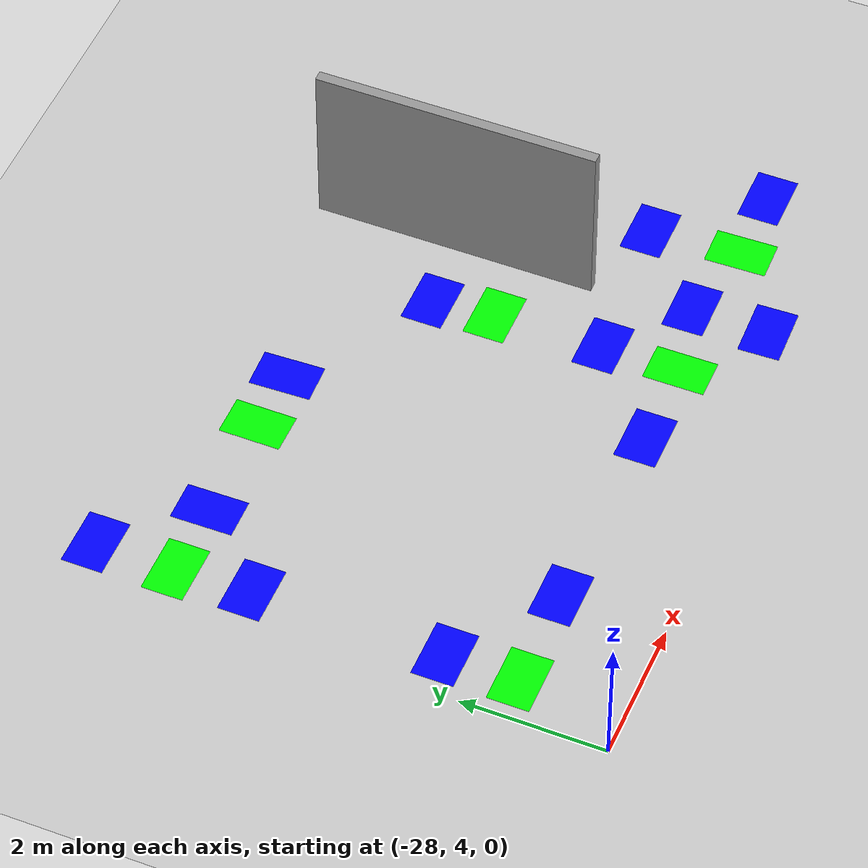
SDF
<sdf version="1.6">
 <world name="default">
  <model name="ground_plane">
   <pose>0 0 0.001 0 -0 0</pose>
   <static>1</static>
   <link name="link">
    <collision name="collision">
     <geometry><plane><normal>0 0 1</normal><size>100 100</size></plane></geometry>
     <surface><friction><ode><mu>100</mu><mu2>50</mu2></ode></friction></surface>
    </collision>
    <visual name="visual">
     <cast_shadows>0</cast_shadows>
     <geometry><plane><normal>0 0 1</normal><size>100 100</size></plane></geometry>
     <material>
      <script><uri>file://media/materials/scripts/gazebo.material</uri><name>Gazebo/Grey</name></script>
     </material>
    </visual>
   </link>
  </model>
  <model name="intersection_0">
   <link name="link">
    <pose>0 0 0.001 0 -0 0</pose>
    <inertial>
     <mass>0.0352517</mass>
     <inertia>
      <ixx>0.000997067</ixx>
      <ixy>0</ixy>
      <ixz>0</ixz>
      <iyy>0.00220147</iyy>
      <iyz>0</iyz>
      <izz>0.0031692</izz>
     </inertia>
     <pose>0 0 0.001 0 -0 0</pose>
    </inertial>
    <visual name="visual">
     <geometry><box><size>0.862743 0.578289 1e-06</size></box></geometry>
     <material>
      <script><name>Gazebo/Grey</name><uri>file://media/materials/scripts/gazebo.material</uri></script>
      <ambient>0 0 1 1</ambient>
      <diffuse>0 0 1 1</diffuse>
      <specular>0 0 1 1</specular>
      <emissive>0 0 1 1</emissive>
      <shader type="vertex"><normal_map>__default__</normal_map></shader>
     </material>
     <pose>0 0 0.001 0 -0 0</pose>
    </visual>
    <collision name="collision">
     <pose>0 0 0.001 0 -0 0</pose>
     <geometry><box><size>0.862743 0.578289 0.000477</size></box></geometry>
     <surface>
      <friction>
       <ode><mu>1</mu><mu2>1</mu2><fdir1>0 0 0</fdir1><slip1>0</slip1><slip2>0</slip2></ode>
       <torsional>
        <coefficient>1</coefficient>
        <patch_radius>0</patch_radius>
        <surface_radius>0</surface_radius>
        <use_patch_radius>1</use_patch_radius>
        <ode><slip>0</slip></ode>
       </torsional>
      </friction>
      <bounce><restitution_coefficient>0</restitution_coefficient><threshold>1e+06</threshold></bounce>
      <contact>
       <collide_without_contact>0</collide_without_contact>
       <collide_without_contact_bitmask>1</collide_without_contact_bitmask>
       <collide_bitmask>1</collide_bitmask>
       <ode>
        <soft_cfm>0</soft_cfm>
        <soft_erp>0.2</soft_erp>
        <kp>1e+13</kp>
        <kd>1</kd>
        <max_vel>0.01</max_vel>
        <min_depth>0</min_depth>
       </ode>
       <bullet>
        <split_impulse>1</split_impulse>
        <split_impulse_penetration_threshold>-0.01</split_impulse_penetration_threshold>
        <soft_cfm>0</soft_cfm>
        <soft_erp>0.2</soft_erp>
        <kp>1e+13</kp>
        <kd>1</kd>
       </bullet>
      </contact>
     </surface>
    </collision>
   </link>
   <static>1</static>
   <pose>-26.3775 10.1536 0 0 0 -1.55728</pose>
  </model>
  <model name="intersection_1">
   <link name="link">
    <pose>0 0 0.001 0 -0 0</pose>
    <inertial>
     <mass>0.0352517</mass>
     <inertia>
      <ixx>0.000997067</ixx>
      <ixy>0</ixy>
      <ixz>0</ixz>
      <iyy>0.00220147</iyy>
      <iyz>0</iyz>
      <izz>0.0031692</izz>
     </inertia>
     <pose>0 0 0.001 0 -0 0</pose>
    </inertial>
    <visual name="visual">
     <geometry><box><size>0.862743 0.578289 1e-06</size></box></geometry>
     <material>
      <script><name>Gazebo/Grey</name><uri>file://media/materials/scripts/gazebo.material</uri></script>
      <ambient>0 0 1 1</ambient>
      <diffuse>0 0 1 1</diffuse>
      <specular>0 0 1 1</specular>
      <emissive>0 0 1 1</emissive>
      <shader type="vertex"><normal_map>__default__</normal_map></shader>
     </material>
     <pose>0 0 0.001 0 -0 0</pose>
    </visual>
    <collision name="collision">
     <pose>0 0 0.001 0 -0 0</pose>
     <geometry><box><size>0.862743 0.578289 0.000477</size></box></geometry>
     <surface>
      <friction>
       <ode><mu>1</mu><mu2>1</mu2><fdir1>0 0 0</fdir1><slip1>0</slip1><slip2>0</slip2></ode>
       <torsional>
        <coefficient>1</coefficient>
        <patch_radius>0</patch_radius>
        <surface_radius>0</surface_radius>
        <use_patch_radius>1</use_patch_radius>
        <ode><slip>0</slip></ode>
       </torsional>
      </friction>
      <bounce><restitution_coefficient>0</restitution_coefficient><threshold>1e+06</threshold></bounce>
      <contact>
       <collide_without_contact>0</collide_without_contact>
       <collide_without_contact_bitmask>1</collide_without_contact_bitmask>
       <collide_bitmask>1</collide_bitmask>
       <ode>
        <soft_cfm>0</soft_cfm>
        <soft_erp>0.2</soft_erp>
        <kp>1e+13</kp>
        <kd>1</kd>
        <max_vel>0.01</max_vel>
        <min_depth>0</min_depth>
       </ode>
       <bullet>
        <split_impulse>1</split_impulse>
        <split_impulse_penetration_threshold>-0.01</split_impulse_penetration_threshold>
        <soft_cfm>0</soft_cfm>
        <soft_erp>0.2</soft_erp>
        <kp>1e+13</kp>
        <kd>1</kd>
       </bullet>
      </contact>
     </surface>
    </collision>
   </link>
   <static>1</static>
   <pose>-21.7801 6.48312 0 0 -0 0</pose>
  </model>
  <model name="intersection_2">
   <link name="link">
    <pose>0 0 0.001 0 -0 0</pose>
    <inertial>
     <mass>0.0352517</mass>
     <inertia>
      <ixx>0.000997067</ixx>
      <ixy>0</ixy>
      <ixz>0</ixz>
      <iyy>0.00220147</iyy>
      <iyz>0</iyz>
      <izz>0.0031692</izz>
     </inertia>
     <pose>0 0 0.001 0 -0 0</pose>
    </inertial>
    <visual name="visual">
     <geometry><box><size>0.862743 0.578289 1e-06</size></box></geometry>
     <material>
      <script><name>Gazebo/Grey</name><uri>file://media/materials/scripts/gazebo.material</uri></script>
      <ambient>0 0 1 1</ambient>
      <diffuse>0 0 1 1</diffuse>
      <specular>0 0 1 1</specular>
      <emissive>0 0 1 1</emissive>
      <shader type="vertex"><normal_map>__default__</normal_map></shader>
     </material>
     <pose>0 0 0.001 0 -0 0</pose>
    </visual>
    <collision name="collision">
     <pose>0 0 0.001 0 -0 0</pose>
     <geometry><box><size>0.862743 0.578289 0.000477</size></box></geometry>
     <surface>
      <friction>
       <ode><mu>1</mu><mu2>1</mu2><fdir1>0 0 0</fdir1><slip1>0</slip1><slip2>0</slip2></ode>
       <torsional>
        <coefficient>1</coefficient>
        <patch_radius>0</patch_radius>
        <surface_radius>0</surface_radius>
        <use_patch_radius>1</use_patch_radius>
        <ode><slip>0</slip></ode>
       </torsional>
      </friction>
      <bounce><restitution_coefficient>0</restitution_coefficient><threshold>1e+06</threshold></bounce>
      <contact>
       <collide_without_contact>0</collide_without_contact>
       <collide_without_contact_bitmask>1</collide_without_contact_bitmask>
       <collide_bitmask>1</collide_bitmask>
       <ode>
        <soft_cfm>0</soft_cfm>
        <soft_erp>0.2</soft_erp>
        <kp>1e+13</kp>
        <kd>1</kd>
        <max_vel>0.01</max_vel>
        <min_depth>0</min_depth>
       </ode>
       <bullet>
        <split_impulse>1</split_impulse>
        <split_impulse_penetration_threshold>-0.01</split_impulse_penetration_threshold>
        <soft_cfm>0</soft_cfm>
        <soft_erp>0.2</soft_erp>
        <kp>1e+13</kp>
        <kd>1</kd>
       </bullet>
      </contact>
     </surface>
    </collision>
   </link>
   <static>1</static>
   <pose>-25.9437 5.44424 0 0 -0 0</pose>
  </model>
  <model name="intersection_10">
   <link name="link">
    <pose>0 0 0.001 0 -0 0</pose>
    <inertial>
     <mass>0.0352517</mass>
     <inertia>
      <ixx>0.000997067</ixx>
      <ixy>0</ixy>
      <ixz>0</ixz>
      <iyy>0.00220147</iyy>
      <iyz>0</iyz>
      <izz>0.0031692</izz>
     </inertia>
     <pose>0 0 0.001 0 -0 0</pose>
    </inertial>
    <visual name="visual">
     <geometry><box><size>0.862743 0.578289 1e-06</size></box></geometry>
     <material>
      <script><name>Gazebo/Grey</name><uri>file://media/materials/scripts/gazebo.material</uri></script>
      <ambient>0 0 1 1</ambient>
      <diffuse>0 0 1 1</diffuse>
      <specular>0 0 1 1</specular>
      <emissive>0 0 1 1</emissive>
      <shader type="vertex"><normal_map>__default__</normal_map></shader>
     </material>
     <pose>0 0 0.001 0 -0 0</pose>
    </visual>
    <collision name="collision">
     <pose>0 0 0.001 0 -0 0</pose>
     <geometry><box><size>0.862743 0.578289 0.000477</size></box></geometry>
     <surface>
      <friction>
       <ode><mu>1</mu><mu2>1</mu2><fdir1>0 0 0</fdir1><slip1>0</slip1><slip2>0</slip2></ode>
       <torsional>
        <coefficient>1</coefficient>
        <patch_radius>0</patch_radius>
        <surface_radius>0</surface_radius>
        <use_patch_radius>1</use_patch_radius>
        <ode><slip>0</slip></ode>
       </torsional>
      </friction>
      <bounce><restitution_coefficient>0</restitution_coefficient><threshold>1e+06</threshold></bounce>
      <contact>
       <collide_without_contact>0</collide_without_contact>
       <collide_without_contact_bitmask>1</collide_without_contact_bitmask>
       <collide_bitmask>1</collide_bitmask>
       <ode>
        <soft_cfm>0</soft_cfm>
        <soft_erp>0.2</soft_erp>
        <kp>1e+13</kp>
        <kd>1</kd>
        <max_vel>0.01</max_vel>
        <min_depth>0</min_depth>
       </ode>
       <bullet>
        <split_impulse>1</split_impulse>
        <split_impulse_penetration_threshold>-0.01</split_impulse_penetration_threshold>
        <soft_cfm>0</soft_cfm>
        <soft_erp>0.2</soft_erp>
        <kp>1e+13</kp>
        <kd>1</kd>
       </bullet>
      </contact>
     </surface>
    </collision>
   </link>
   <static>1</static>
   <pose>-19.5726 6.64335 0 0 -0 0</pose>
  </model>
  <model name="corridor_1">
   <link name="link">
    <pose>0 0 0.001 0 -0 0</pose>
    <inertial>
     <mass>0.0352517</mass>
     <inertia>
      <ixx>0.00099707</ixx>
      <ixy>0</ixy>
      <ixz>0</ixz>
      <iyy>0.00220147</iyy>
      <iyz>0</iyz>
      <izz>0.0031692</izz>
     </inertia>
     <pose>0 0 0.001 0 -0 0</pose>
    </inertial>
    <visual name="visual">
     <geometry><box><size>0.862743 0.578289 1e-06</size></box></geometry>
     <material>
      <script><name>Gazebo/Grey</name><uri>file://media/materials/scripts/gazebo.material</uri></script>
      <ambient>0 1 0 1</ambient>
      <diffuse>0 1 0 1</diffuse>
      <specular>0 1 0 1</specular>
      <emissive>0 1 0 1</emissive>
      <shader type="vertex"><normal_map>__default__</normal_map></shader>
     </material>
     <pose>0 0 0.001 0 -0 0</pose>
    </visual>
    <collision name="collision">
     <pose>0 0 0.001 0 -0 0</pose>
     <geometry><box><size>0.862743 0.578289 0.000477</size></box></geometry>
     <surface>
      <friction>
       <ode><mu>1</mu><mu2>1</mu2><fdir1>0 0 0</fdir1><slip1>0</slip1><slip2>0</slip2></ode>
       <torsional>
        <coefficient>1</coefficient>
        <patch_radius>0</patch_radius>
        <surface_radius>0</surface_radius>
        <use_patch_radius>1</use_patch_radius>
        <ode><slip>0</slip></ode>
       </torsional>
      </friction>
      <bounce><restitution_coefficient>0</restitution_coefficient><threshold>1e+06</threshold></bounce>
      <contact>
       <collide_without_contact>0</collide_without_contact>
       <collide_without_contact_bitmask>1</collide_without_contact_bitmask>
       <collide_bitmask>1</collide_bitmask>
       <ode>
        <soft_cfm>0</soft_cfm>
        <soft_erp>0.2</soft_erp>
        <kp>1e+13</kp>
        <kd>1</kd>
        <max_vel>0.01</max_vel>
        <min_depth>0</min_depth>
       </ode>
       <bullet>
        <split_impulse>1</split_impulse>
        <split_impulse_penetration_threshold>-0.01</split_impulse_penetration_threshold>
        <soft_cfm>0</soft_cfm>
        <soft_erp>0.2</soft_erp>
        <kp>1e+13</kp>
        <kd>1</kd>
       </bullet>
      </contact>
     </surface>
    </collision>
   </link>
   <static>1</static>
   <pose>-27.439 10.1446 0 0 -0 0</pose>
  </model>
  <model name="corridor_2">
   <link name="link">
    <pose>0 0 0.001 0 -0 0</pose>
    <inertial>
     <mass>0.0352517</mass>
     <inertia>
      <ixx>0.00099707</ixx>
      <ixy>0</ixy>
      <ixz>0</ixz>
      <iyy>0.00220147</iyy>
      <iyz>0</iyz>
      <izz>0.0031692</izz>
     </inertia>
     <pose>0 0 0.001 0 -0 0</pose>
    </inertial>
    <visual name="visual">
     <geometry><box><size>0.862743 0.578289 1e-06</size></box></geometry>
     <material>
      <script><name>Gazebo/Grey</name><uri>file://media/materials/scripts/gazebo.material</uri></script>
      <ambient>0 1 0 1</ambient>
      <diffuse>0 1 0 1</diffuse>
      <specular>0 1 0 1</specular>
      <emissive>0 1 0 1</emissive>
      <shader type="vertex"><normal_map>__default__</normal_map></shader>
     </material>
     <pose>0 0 0.001 0 -0 0</pose>
    </visual>
    <collision name="collision">
     <pose>0 0 0.001 0 -0 0</pose>
     <geometry><box><size>0.862743 0.578289 0.000477</size></box></geometry>
     <surface>
      <friction>
       <ode><mu>1</mu><mu2>1</mu2><fdir1>0 0 0</fdir1><slip1>0</slip1><slip2>0</slip2></ode>
       <torsional>
        <coefficient>1</coefficient>
        <patch_radius>0</patch_radius>
        <surface_radius>0</surface_radius>
        <use_patch_radius>1</use_patch_radius>
        <ode><slip>0</slip></ode>
       </torsional>
      </friction>
      <bounce><restitution_coefficient>0</restitution_coefficient><threshold>1e+06</threshold></bounce>
      <contact>
       <collide_without_contact>0</collide_without_contact>
       <collide_without_contact_bitmask>1</collide_without_contact_bitmask>
       <collide_bitmask>1</collide_bitmask>
       <ode>
        <soft_cfm>0</soft_cfm>
        <soft_erp>0.2</soft_erp>
        <kp>1e+13</kp>
        <kd>1</kd>
        <max_vel>0.01</max_vel>
        <min_depth>0</min_depth>
       </ode>
       <bullet>
        <split_impulse>1</split_impulse>
        <split_impulse_penetration_threshold>-0.01</split_impulse_penetration_threshold>
        <soft_cfm>0</soft_cfm>
        <soft_erp>0.2</soft_erp>
        <kp>1e+13</kp>
        <kd>1</kd>
       </bullet>
      </contact>
     </surface>
    </collision>
   </link>
   <static>1</static>
   <pose>-27.3839 5.42148 0 0 -0 0</pose>
  </model>
  <model name="corridor_20">
   <link name="link">
    <pose>0 0 0.001 0 -0 0</pose>
    <inertial>
     <mass>0.0352517</mass>
     <inertia>
      <ixx>0.00099707</ixx>
      <ixy>0</ixy>
      <ixz>0</ixz>
      <iyy>0.00220147</iyy>
      <iyz>0</iyz>
      <izz>0.0031692</izz>
     </inertia>
     <pose>0 0 0.001 0 -0 0</pose>
    </inertial>
    <visual name="visual">
     <geometry><box><size>0.862743 0.578289 1e-06</size></box></geometry>
     <material>
      <script><name>Gazebo/Grey</name><uri>file://media/materials/scripts/gazebo.material</uri></script>
      <ambient>0 1 0 1</ambient>
      <diffuse>0 1 0 1</diffuse>
      <specular>0 1 0 1</specular>
      <emissive>0 1 0 1</emissive>
      <shader type="vertex"><normal_map>__default__</normal_map></shader>
     </material>
     <pose>0 0 0.001 0 -0 0</pose>
    </visual>
    <collision name="collision">
     <pose>0 0 0.001 0 -0 0</pose>
     <geometry><box><size>0.862743 0.578289 0.000477</size></box></geometry>
     <surface>
      <friction>
       <ode><mu>1</mu><mu2>1</mu2><fdir1>0 0 0</fdir1><slip1>0</slip1><slip2>0</slip2></ode>
       <torsional>
        <coefficient>1</coefficient>
        <patch_radius>0</patch_radius>
        <surface_radius>0</surface_radius>
        <use_patch_radius>1</use_patch_radius>
        <ode><slip>0</slip></ode>
       </torsional>
      </friction>
      <bounce><restitution_coefficient>0</restitution_coefficient><threshold>1e+06</threshold></bounce>
      <contact>
       <collide_without_contact>0</collide_without_contact>
       <collide_without_contact_bitmask>1</collide_without_contact_bitmask>
       <collide_bitmask>1</collide_bitmask>
       <ode>
        <soft_cfm>0</soft_cfm>
        <soft_erp>0.2</soft_erp>
        <kp>1e+13</kp>
        <kd>1</kd>
        <max_vel>0.01</max_vel>
        <min_depth>0</min_depth>
       </ode>
       <bullet>
        <split_impulse>1</split_impulse>
        <split_impulse_penetration_threshold>-0.01</split_impulse_penetration_threshold>
        <soft_cfm>0</soft_cfm>
        <soft_erp>0.2</soft_erp>
        <kp>1e+13</kp>
        <kd>1</kd>
       </bullet>
      </contact>
     </surface>
    </collision>
   </link>
   <static>1</static>
   <pose>-19.4894 5.36005 0 0 -0 1.5963</pose>
  </model>
  <model name="corridor_21">
   <link name="link">
    <pose>0 0 0.001 0 -0 0</pose>
    <inertial>
     <mass>0.0352517</mass>
     <inertia>
      <ixx>0.00099707</ixx>
      <ixy>0</ixy>
      <ixz>0</ixz>
      <iyy>0.00220147</iyy>
      <iyz>0</iyz>
      <izz>0.0031692</izz>
     </inertia>
     <pose>0 0 0.001 0 -0 0</pose>
    </inertial>
    <visual name="visual">
     <geometry><box><size>0.862743 0.578289 1e-06</size></box></geometry>
     <material>
      <script><name>Gazebo/Grey</name><uri>file://media/materials/scripts/gazebo.material</uri></script>
      <ambient>0 1 0 1</ambient>
      <diffuse>0 1 0 1</diffuse>
      <specular>0 1 0 1</specular>
      <emissive>0 1 0 1</emissive>
      <shader type="vertex"><normal_map>__default__</normal_map></shader>
     </material>
     <pose>0 0 0.001 0 -0 0</pose>
    </visual>
    <collision name="collision">
     <pose>0 0 0.001 0 -0 0</pose>
     <geometry><box><size>0.862743 0.578289 0.000477</size></box></geometry>
     <surface>
      <friction>
       <ode><mu>1</mu><mu2>1</mu2><fdir1>0 0 0</fdir1><slip1>0</slip1><slip2>0</slip2></ode>
       <torsional>
        <coefficient>1</coefficient>
        <patch_radius>0</patch_radius>
        <surface_radius>0</surface_radius>
        <use_patch_radius>1</use_patch_radius>
        <ode><slip>0</slip></ode>
       </torsional>
      </friction>
      <bounce><restitution_coefficient>0</restitution_coefficient><threshold>1e+06</threshold></bounce>
      <contact>
       <collide_without_contact>0</collide_without_contact>
       <collide_without_contact_bitmask>1</collide_without_contact_bitmask>
       <collide_bitmask>1</collide_bitmask>
       <ode>
        <soft_cfm>0</soft_cfm>
        <soft_erp>0.2</soft_erp>
        <kp>1e+13</kp>
        <kd>1</kd>
        <max_vel>0.01</max_vel>
        <min_depth>0</min_depth>
       </ode>
       <bullet>
        <split_impulse>1</split_impulse>
        <split_impulse_penetration_threshold>-0.01</split_impulse_penetration_threshold>
        <soft_cfm>0</soft_cfm>
        <soft_erp>0.2</soft_erp>
        <kp>1e+13</kp>
        <kd>1</kd>
       </bullet>
      </contact>
     </surface>
    </collision>
   </link>
   <static>1</static>
   <pose>-21.797 5.37827 0 0 0 -1.56957</pose>
  </model>
  <model name="intersection_28">
   <link name="link">
    <pose>0 0 0.001 0 -0 0</pose>
    <inertial>
     <mass>0.0352517</mass>
     <inertia>
      <ixx>0.000997067</ixx>
      <ixy>0</ixy>
      <ixz>0</ixz>
      <iyy>0.00220147</iyy>
      <iyz>0</iyz>
      <izz>0.0031692</izz>
     </inertia>
     <pose>0 0 0.001 0 -0 0</pose>
    </inertial>
    <visual name="visual">
     <geometry><box><size>0.862743 0.578289 1e-06</size></box></geometry>
     <material>
      <script><name>Gazebo/Grey</name><uri>file://media/materials/scripts/gazebo.material</uri></script>
      <ambient>0 0 1 1</ambient>
      <diffuse>0 0 1 1</diffuse>
      <specular>0 0 1 1</specular>
      <emissive>0 0 1 1</emissive>
      <shader type="vertex"><normal_map>__default__</normal_map></shader>
     </material>
     <pose>0 0 0.001 0 -0 0</pose>
    </visual>
    <collision name="collision">
     <pose>0 0 0.001 0 -0 0</pose>
     <geometry><box><size>0.862743 0.578289 0.000477</size></box></geometry>
     <surface>
      <friction>
       <ode><mu>1</mu><mu2>1</mu2><fdir1>0 0 0</fdir1><slip1>0</slip1><slip2>0</slip2></ode>
       <torsional>
        <coefficient>1</coefficient>
        <patch_radius>0</patch_radius>
        <surface_radius>0</surface_radius>
        <use_patch_radius>1</use_patch_radius>
        <ode><slip>0</slip></ode>
       </torsional>
      </friction>
      <bounce><restitution_coefficient>0</restitution_coefficient><threshold>1e+06</threshold></bounce>
      <contact>
       <collide_without_contact>0</collide_without_contact>
       <collide_without_contact_bitmask>1</collide_without_contact_bitmask>
       <collide_bitmask>1</collide_bitmask>
       <ode>
        <soft_cfm>0</soft_cfm>
        <soft_erp>0.2</soft_erp>
        <kp>1e+13</kp>
        <kd>1</kd>
        <max_vel>0.01</max_vel>
        <min_depth>0</min_depth>
       </ode>
       <bullet>
        <split_impulse>1</split_impulse>
        <split_impulse_penetration_threshold>-0.01</split_impulse_penetration_threshold>
        <soft_cfm>0</soft_cfm>
        <soft_erp>0.2</soft_erp>
        <kp>1e+13</kp>
        <kd>1</kd>
       </bullet>
      </contact>
     </surface>
    </collision>
   </link>
   <static>1</static>
   <pose>-27.4297 11.2794 0 0 -0 0</pose>
  </model>
  <model name="intersection_30">
   <link name="link">
    <pose>0 0 0.001 0 -0 0</pose>
    <inertial>
     <mass>0.0352517</mass>
     <inertia>
      <ixx>0.000997067</ixx>
      <ixy>0</ixy>
      <ixz>0</ixz>
      <iyy>0.00220147</iyy>
      <iyz>0</iyz>
      <izz>0.0031692</izz>
     </inertia>
     <pose>0 0 0.001 0 -0 0</pose>
    </inertial>
    <visual name="visual">
     <geometry><box><size>0.862743 0.578289 1e-06</size></box></geometry>
     <material>
      <script><name>Gazebo/Grey</name><uri>file://media/materials/scripts/gazebo.material</uri></script>
      <ambient>0 0 1 1</ambient>
      <diffuse>0 0 1 1</diffuse>
      <specular>0 0 1 1</specular>
      <emissive>0 0 1 1</emissive>
      <shader type="vertex"><normal_map>__default__</normal_map></shader>
     </material>
     <pose>0 0 0.001 0 -0 0</pose>
    </visual>
    <collision name="collision">
     <pose>0 0 0.001 0 -0 0</pose>
     <geometry><box><size>0.862743 0.578289 0.000477</size></box></geometry>
     <surface>
      <friction>
       <ode><mu>1</mu><mu2>1</mu2><fdir1>0 0 0</fdir1><slip1>0</slip1><slip2>0</slip2></ode>
       <torsional>
        <coefficient>1</coefficient>
        <patch_radius>0</patch_radius>
        <surface_radius>0</surface_radius>
        <use_patch_radius>1</use_patch_radius>
        <ode><slip>0</slip></ode>
       </torsional>
      </friction>
      <bounce><restitution_coefficient>0</restitution_coefficient><threshold>1e+06</threshold></bounce>
      <contact>
       <collide_without_contact>0</collide_without_contact>
       <collide_without_contact_bitmask>1</collide_without_contact_bitmask>
       <collide_bitmask>1</collide_bitmask>
       <ode>
        <soft_cfm>0</soft_cfm>
        <soft_erp>0.2</soft_erp>
        <kp>1e+13</kp>
        <kd>1</kd>
        <max_vel>0.01</max_vel>
        <min_depth>0</min_depth>
       </ode>
       <bullet>
        <split_impulse>1</split_impulse>
        <split_impulse_penetration_threshold>-0.01</split_impulse_penetration_threshold>
        <soft_cfm>0</soft_cfm>
        <soft_erp>0.2</soft_erp>
        <kp>1e+13</kp>
        <kd>1</kd>
       </bullet>
      </contact>
     </surface>
    </collision>
   </link>
   <static>1</static>
   <pose>-27.3757 9.10668 0 0 -0 0</pose>
  </model>
  <model name="intersection_34">
   <link name="link">
    <pose>0 0 0.001 0 -0 0</pose>
    <inertial>
     <mass>0.0352517</mass>
     <inertia>
      <ixx>0.000997067</ixx>
      <ixy>0</ixy>
      <ixz>0</ixz>
      <iyy>0.00220147</iyy>
      <iyz>0</iyz>
      <izz>0.0031692</izz>
     </inertia>
     <pose>0 0 0.001 0 -0 0</pose>
    </inertial>
    <visual name="visual">
     <geometry><box><size>0.862743 0.578289 1e-06</size></box></geometry>
     <material>
      <script><name>Gazebo/Grey</name><uri>file://media/materials/scripts/gazebo.material</uri></script>
      <ambient>0 0 1 1</ambient>
      <diffuse>0 0 1 1</diffuse>
      <specular>0 0 1 1</specular>
      <emissive>0 0 1 1</emissive>
      <shader type="vertex"><normal_map>__default__</normal_map></shader>
     </material>
     <pose>0 0 0.001 0 -0 0</pose>
    </visual>
    <collision name="collision">
     <pose>0 0 0.001 0 -0 0</pose>
     <geometry><box><size>0.862743 0.578289 0.000477</size></box></geometry>
     <surface>
      <friction>
       <ode><mu>1</mu><mu2>1</mu2><fdir1>0 0 0</fdir1><slip1>0</slip1><slip2>0</slip2></ode>
       <torsional>
        <coefficient>1</coefficient>
        <patch_radius>0</patch_radius>
        <surface_radius>0</surface_radius>
        <use_patch_radius>1</use_patch_radius>
        <ode><slip>0</slip></ode>
       </torsional>
      </friction>
      <bounce><restitution_coefficient>0</restitution_coefficient><threshold>1e+06</threshold></bounce>
      <contact>
       <collide_without_contact>0</collide_without_contact>
       <collide_without_contact_bitmask>1</collide_without_contact_bitmask>
       <collide_bitmask>1</collide_bitmask>
       <ode>
        <soft_cfm>0</soft_cfm>
        <soft_erp>0.2</soft_erp>
        <kp>1e+13</kp>
        <kd>1</kd>
        <max_vel>0.01</max_vel>
        <min_depth>0</min_depth>
       </ode>
       <bullet>
        <split_impulse>1</split_impulse>
        <split_impulse_penetration_threshold>-0.01</split_impulse_penetration_threshold>
        <soft_cfm>0</soft_cfm>
        <soft_erp>0.2</soft_erp>
        <kp>1e+13</kp>
        <kd>1</kd>
       </bullet>
      </contact>
     </surface>
    </collision>
   </link>
   <static>1</static>
   <pose>-27.3858 6.44044 0 0 -0 0</pose>
  </model>
  <model name="intersection_35">
   <link name="link">
    <pose>0 0 0.001 0 -0 0</pose>
    <inertial>
     <mass>0.0352517</mass>
     <inertia>
      <ixx>0.000997067</ixx>
      <ixy>0</ixy>
      <ixz>0</ixz>
      <iyy>0.00220147</iyy>
      <iyz>0</iyz>
      <izz>0.0031692</izz>
     </inertia>
     <pose>0 0 0.001 0 -0 0</pose>
    </inertial>
    <visual name="visual">
     <geometry><box><size>0.862743 0.578289 1e-06</size></box></geometry>
     <material>
      <script><name>Gazebo/Grey</name><uri>file://media/materials/scripts/gazebo.material</uri></script>
      <ambient>0 0 1 1</ambient>
      <diffuse>0 0 1 1</diffuse>
      <specular>0 0 1 1</specular>
      <emissive>0 0 1 1</emissive>
      <shader type="vertex"><normal_map>__default__</normal_map></shader>
     </material>
     <pose>0 0 0.001 0 -0 0</pose>
    </visual>
    <collision name="collision">
     <pose>0 0 0.001 0 -0 0</pose>
     <geometry><box><size>0.862743 0.578289 0.000477</size></box></geometry>
     <surface>
      <friction>
       <ode><mu>1</mu><mu2>1</mu2><fdir1>0 0 0</fdir1><slip1>0</slip1><slip2>0</slip2></ode>
       <torsional>
        <coefficient>1</coefficient>
        <patch_radius>0</patch_radius>
        <surface_radius>0</surface_radius>
        <use_patch_radius>1</use_patch_radius>
        <ode><slip>0</slip></ode>
       </torsional>
      </friction>
      <bounce><restitution_coefficient>0</restitution_coefficient><threshold>1e+06</threshold></bounce>
      <contact>
       <collide_without_contact>0</collide_without_contact>
       <collide_without_contact_bitmask>1</collide_without_contact_bitmask>
       <collide_bitmask>1</collide_bitmask>
       <ode>
        <soft_cfm>0</soft_cfm>
        <soft_erp>0.2</soft_erp>
        <kp>1e+13</kp>
        <kd>1</kd>
        <max_vel>0.01</max_vel>
        <min_depth>0</min_depth>
       </ode>
       <bullet>
        <split_impulse>1</split_impulse>
        <split_impulse_penetration_threshold>-0.01</split_impulse_penetration_threshold>
        <soft_cfm>0</soft_cfm>
        <soft_erp>0.2</soft_erp>
        <kp>1e+13</kp>
        <kd>1</kd>
       </bullet>
      </contact>
     </surface>
    </collision>
   </link>
   <static>1</static>
   <pose>-23.0741 5.38288 0 0 -0 0</pose>
  </model>
  <model name="intersection_36">
   <link name="link">
    <pose>0 0 0.001 0 -0 0</pose>
    <inertial>
     <mass>0.0352517</mass>
     <inertia>
      <ixx>0.000997067</ixx>
      <ixy>0</ixy>
      <ixz>0</ixz>
      <iyy>0.00220147</iyy>
      <iyz>0</iyz>
      <izz>0.0031692</izz>
     </inertia>
     <pose>0 0 0.001 0 -0 0</pose>
    </inertial>
    <visual name="visual">
     <geometry><box><size>0.862743 0.578289 1e-06</size></box></geometry>
     <material>
      <script><name>Gazebo/Grey</name><uri>file://media/materials/scripts/gazebo.material</uri></script>
      <ambient>0 0 1 1</ambient>
      <diffuse>0 0 1 1</diffuse>
      <specular>0 0 1 1</specular>
      <emissive>0 0 1 1</emissive>
      <shader type="vertex"><normal_map>__default__</normal_map></shader>
     </material>
     <pose>0 0 0.001 0 -0 0</pose>
    </visual>
    <collision name="collision">
     <pose>0 0 0.001 0 -0 0</pose>
     <geometry><box><size>0.862743 0.578289 0.000477</size></box></geometry>
     <surface>
      <friction>
       <ode><mu>1</mu><mu2>1</mu2><fdir1>0 0 0</fdir1><slip1>0</slip1><slip2>0</slip2></ode>
       <torsional>
        <coefficient>1</coefficient>
        <patch_radius>0</patch_radius>
        <surface_radius>0</surface_radius>
        <use_patch_radius>1</use_patch_radius>
        <ode><slip>0</slip></ode>
       </torsional>
      </friction>
      <bounce><restitution_coefficient>0</restitution_coefficient><threshold>1e+06</threshold></bounce>
      <contact>
       <collide_without_contact>0</collide_without_contact>
       <collide_without_contact_bitmask>1</collide_without_contact_bitmask>
       <collide_bitmask>1</collide_bitmask>
       <ode>
        <soft_cfm>0</soft_cfm>
        <soft_erp>0.2</soft_erp>
        <kp>1e+13</kp>
        <kd>1</kd>
        <max_vel>0.01</max_vel>
        <min_depth>0</min_depth>
       </ode>
       <bullet>
        <split_impulse>1</split_impulse>
        <split_impulse_penetration_threshold>-0.01</split_impulse_penetration_threshold>
        <soft_cfm>0</soft_cfm>
        <soft_erp>0.2</soft_erp>
        <kp>1e+13</kp>
        <kd>1</kd>
       </bullet>
      </contact>
     </surface>
    </collision>
   </link>
   <static>1</static>
   <pose>-20.6882 5.61693 0 0 -0 0.013966</pose>
  </model>
  <model name="intersection_39">
   <link name="link">
    <pose>0 0 0.001 0 -0 0</pose>
    <inertial>
     <mass>0.0352517</mass>
     <inertia>
      <ixx>0.000997067</ixx>
      <ixy>0</ixy>
      <ixz>0</ixz>
      <iyy>0.00220147</iyy>
      <iyz>0</iyz>
      <izz>0.0031692</izz>
     </inertia>
     <pose>0 0 0.001 0 -0 0</pose>
    </inertial>
    <visual name="visual">
     <geometry><box><size>0.862743 0.578289 1e-06</size></box></geometry>
     <material>
      <script><name>Gazebo/Grey</name><uri>file://media/materials/scripts/gazebo.material</uri></script>
      <ambient>0 0 1 1</ambient>
      <diffuse>0 0 1 1</diffuse>
      <specular>0 0 1 1</specular>
      <emissive>0 0 1 1</emissive>
      <shader type="vertex"><normal_map>__default__</normal_map></shader>
     </material>
     <pose>0 0 0.001 0 -0 0</pose>
    </visual>
    <collision name="collision">
     <pose>0 0 0.001 0 -0 0</pose>
     <geometry><box><size>0.862743 0.578289 0.000477</size></box></geometry>
     <surface>
      <friction>
       <ode><mu>1</mu><mu2>1</mu2><fdir1>0 0 0</fdir1><slip1>0</slip1><slip2>0</slip2></ode>
       <torsional>
        <coefficient>1</coefficient>
        <patch_radius>0</patch_radius>
        <surface_radius>0</surface_radius>
        <use_patch_radius>1</use_patch_radius>
        <ode><slip>0</slip></ode>
       </torsional>
      </friction>
      <bounce><restitution_coefficient>0</restitution_coefficient><threshold>1e+06</threshold></bounce>
      <contact>
       <collide_without_contact>0</collide_without_contact>
       <collide_without_contact_bitmask>1</collide_without_contact_bitmask>
       <collide_bitmask>1</collide_bitmask>
       <ode>
        <soft_cfm>0</soft_cfm>
        <soft_erp>0.2</soft_erp>
        <kp>1e+13</kp>
        <kd>1</kd>
        <max_vel>0.01</max_vel>
        <min_depth>0</min_depth>
       </ode>
       <bullet>
        <split_impulse>1</split_impulse>
        <split_impulse_penetration_threshold>-0.01</split_impulse_penetration_threshold>
        <soft_cfm>0</soft_cfm>
        <soft_erp>0.2</soft_erp>
        <kp>1e+13</kp>
        <kd>1</kd>
       </bullet>
      </contact>
     </surface>
    </collision>
   </link>
   <static>1</static>
   <pose>-18.3906 5.36883 0 0 -0 0</pose>
  </model>
  <model name="Se1_cut">
   <pose>3.62364 13.9276 0 0 -0 0</pose>
   <link name="Wall_87">
    <collision name="Wall_87_Collision">
     <geometry><box><size>4 0.15 2.5</size></box></geometry>
     <pose>0 0 1.25 0 -0 0</pose>
    </collision>
    <visual name="Wall_87_Visual">
     <pose>0 0 1.25 0 -0 0</pose>
     <geometry><box><size>4 0.15 2.5</size></box></geometry>
     <material>
      <script><uri>file://media/materials/scripts/gazebo.material</uri><name>Gazebo/Grey</name></script>
      <ambient>1 1 1 1</ambient>
     </material>
    </visual>
    <pose>-24.4704 -4.93217 0 0 0 -1.5708</pose>
   </link>
   <static>1</static>
  </model>
  <model name="intersection_40">
   <link name="link">
    <pose>0 0 0.001 0 -0 0</pose>
    <inertial>
     <mass>0.0352517</mass>
     <inertia>
      <ixx>0.000997067</ixx>
      <ixy>0</ixy>
      <ixz>0</ixz>
      <iyy>0.00220147</iyy>
      <iyz>0</iyz>
      <izz>0.0031692</izz>
     </inertia>
     <pose>0 0 0.001 0 -0 0</pose>
    </inertial>
    <visual name="visual">
     <geometry><box><size>0.862743 0.578289 1e-06</size></box></geometry>
     <material>
      <script><name>Gazebo/Grey</name><uri>file://media/materials/scripts/gazebo.material</uri></script>
      <ambient>0 0 1 1</ambient>
      <diffuse>0 0 1 1</diffuse>
      <specular>0 0 1 1</specular>
      <emissive>0 0 1 1</emissive>
      <shader type="vertex"><normal_map>__default__</normal_map></shader>
     </material>
     <pose>0 0 0.001 0 -0 0</pose>
    </visual>
    <collision name="collision">
     <pose>0 0 0.001 0 -0 0</pose>
     <geometry><box><size>0.862743 0.578289 0.000477</size></box></geometry>
     <surface>
      <friction>
       <ode><mu>1</mu><mu2>1</mu2><fdir1>0 0 0</fdir1><slip1>0</slip1><slip2>0</slip2></ode>
       <torsional>
        <coefficient>1</coefficient>
        <patch_radius>0</patch_radius>
        <surface_radius>0</surface_radius>
        <use_patch_radius>1</use_patch_radius>
        <ode><slip>0</slip></ode>
       </torsional>
      </friction>
      <bounce><restitution_coefficient>0</restitution_coefficient><threshold>1e+06</threshold></bounce>
      <contact>
       <collide_without_contact>0</collide_without_contact>
       <collide_without_contact_bitmask>1</collide_without_contact_bitmask>
       <collide_bitmask>1</collide_bitmask>
       <ode>
        <soft_cfm>0</soft_cfm>
        <soft_erp>0.2</soft_erp>
        <kp>1e+13</kp>
        <kd>1</kd>
        <max_vel>0.01</max_vel>
        <min_depth>0</min_depth>
       </ode>
       <bullet>
        <split_impulse>1</split_impulse>
        <split_impulse_penetration_threshold>-0.01</split_impulse_penetration_threshold>
        <soft_cfm>0</soft_cfm>
        <soft_erp>0.2</soft_erp>
        <kp>1e+13</kp>
        <kd>1</kd>
       </bullet>
      </contact>
     </surface>
    </collision>
   </link>
   <static>1</static>
   <pose>-23.8889 10.1643 0 0 -0 1.60561</pose>
  </model>
  <model name="intersection_41">
   <link name="link">
    <pose>0 0 0.001 0 -0 0</pose>
    <inertial>
     <mass>0.0352517</mass>
     <inertia>
      <ixx>0.000997067</ixx>
      <ixy>0</ixy>
      <ixz>0</ixz>
      <iyy>0.00220147</iyy>
      <iyz>0</iyz>
      <izz>0.0031692</izz>
     </inertia>
     <pose>0 0 0.001 0 -0 0</pose>
    </inertial>
    <visual name="visual">
     <geometry><box><size>0.862743 0.578289 1e-06</size></box></geometry>
     <material>
      <script><name>Gazebo/Grey</name><uri>file://media/materials/scripts/gazebo.material</uri></script>
      <ambient>0 0 1 1</ambient>
      <diffuse>0 0 1 1</diffuse>
      <specular>0 0 1 1</specular>
      <emissive>0 0 1 1</emissive>
      <shader type="vertex"><normal_map>__default__</normal_map></shader>
     </material>
     <pose>0 0 0.001 0 -0 0</pose>
    </visual>
    <collision name="collision">
     <pose>0 0 0.001 0 -0 0</pose>
     <geometry><box><size>0.862743 0.578289 0.000477</size></box></geometry>
     <surface>
      <friction>
       <ode><mu>1</mu><mu2>1</mu2><fdir1>0 0 0</fdir1><slip1>0</slip1><slip2>0</slip2></ode>
       <torsional>
        <coefficient>1</coefficient>
        <patch_radius>0</patch_radius>
        <surface_radius>0</surface_radius>
        <use_patch_radius>1</use_patch_radius>
        <ode><slip>0</slip></ode>
       </torsional>
      </friction>
      <bounce><restitution_coefficient>0</restitution_coefficient><threshold>1e+06</threshold></bounce>
      <contact>
       <collide_without_contact>0</collide_without_contact>
       <collide_without_contact_bitmask>1</collide_without_contact_bitmask>
       <collide_bitmask>1</collide_bitmask>
       <ode>
        <soft_cfm>0</soft_cfm>
        <soft_erp>0.2</soft_erp>
        <kp>1e+13</kp>
        <kd>1</kd>
        <max_vel>0.01</max_vel>
        <min_depth>0</min_depth>
       </ode>
       <bullet>
        <split_impulse>1</split_impulse>
        <split_impulse_penetration_threshold>-0.01</split_impulse_penetration_threshold>
        <soft_cfm>0</soft_cfm>
        <soft_erp>0.2</soft_erp>
        <kp>1e+13</kp>
        <kd>1</kd>
       </bullet>
      </contact>
     </surface>
    </collision>
   </link>
   <static>1</static>
   <pose>-21.9 8.89719 0 0 -0 0</pose>
  </model>
  <model name="intersection_42">
   <link name="link">
    <pose>0 0 0.001 0 -0 0</pose>
    <inertial>
     <mass>0.0352517</mass>
     <inertia>
      <ixx>0.000997067</ixx>
      <ixy>0</ixy>
      <ixz>0</ixz>
      <iyy>0.00220147</iyy>
      <iyz>0</iyz>
      <izz>0.0031692</izz>
     </inertia>
     <pose>0 0 0.001 0 -0 0</pose>
    </inertial>
    <visual name="visual">
     <geometry><box><size>0.862743 0.578289 1e-06</size></box></geometry>
     <material>
      <script><name>Gazebo/Grey</name><uri>file://media/materials/scripts/gazebo.material</uri></script>
      <ambient>0 0 1 1</ambient>
      <diffuse>0 0 1 1</diffuse>
      <specular>0 0 1 1</specular>
      <emissive>0 0 1 1</emissive>
      <shader type="vertex"><normal_map>__default__</normal_map></shader>
     </material>
     <pose>0 0 0.001 0 -0 0</pose>
    </visual>
    <collision name="collision">
     <pose>0 0 0.001 0 -0 0</pose>
     <geometry><box><size>0.862743 0.578289 0.000477</size></box></geometry>
     <surface>
      <friction>
       <ode><mu>1</mu><mu2>1</mu2><fdir1>0 0 0</fdir1><slip1>0</slip1><slip2>0</slip2></ode>
       <torsional>
        <coefficient>1</coefficient>
        <patch_radius>0</patch_radius>
        <surface_radius>0</surface_radius>
        <use_patch_radius>1</use_patch_radius>
        <ode><slip>0</slip></ode>
       </torsional>
      </friction>
      <bounce><restitution_coefficient>0</restitution_coefficient><threshold>1e+06</threshold></bounce>
      <contact>
       <collide_without_contact>0</collide_without_contact>
       <collide_without_contact_bitmask>1</collide_without_contact_bitmask>
       <collide_bitmask>1</collide_bitmask>
       <ode>
        <soft_cfm>0</soft_cfm>
        <soft_erp>0.2</soft_erp>
        <kp>1e+13</kp>
        <kd>1</kd>
        <max_vel>0.01</max_vel>
        <min_depth>0</min_depth>
       </ode>
       <bullet>
        <split_impulse>1</split_impulse>
        <split_impulse_penetration_threshold>-0.01</split_impulse_penetration_threshold>
        <soft_cfm>0</soft_cfm>
        <soft_erp>0.2</soft_erp>
        <kp>1e+13</kp>
        <kd>1</kd>
       </bullet>
      </contact>
     </surface>
    </collision>
   </link>
   <static>1</static>
   <pose>-19.6131 8.96862 0 0 -0 0</pose>
  </model>
  <model name="intersection_36_clone">
   <link name="link">
    <pose>0 0 0.001 0 -0 0</pose>
    <inertial>
     <mass>0.0352517</mass>
     <inertia>
      <ixx>0.000997067</ixx>
      <ixy>0</ixy>
      <ixz>0</ixz>
      <iyy>0.00220147</iyy>
      <iyz>0</iyz>
      <izz>0.0031692</izz>
     </inertia>
     <pose>0 0 0.001 0 -0 0</pose>
    </inertial>
    <visual name="visual">
     <geometry><box><size>0.862743 0.578289 1e-06</size></box></geometry>
     <material>
      <script><name>Gazebo/Grey</name><uri>file://media/materials/scripts/gazebo.material</uri></script>
      <ambient>0 0 1 1</ambient>
      <diffuse>0 0 1 1</diffuse>
      <specular>0 0 1 1</specular>
      <emissive>0 0 1 1</emissive>
      <shader type="vertex"><normal_map>__default__</normal_map></shader>
     </material>
     <pose>0 0 0.001 0 -0 0</pose>
    </visual>
    <collision name="collision">
     <pose>0 0 0.001 0 -0 0</pose>
     <geometry><box><size>0.862743 0.578289 0.000477</size></box></geometry>
     <surface>
      <friction>
       <ode><mu>1</mu><mu2>1</mu2><fdir1>0 0 0</fdir1><slip1>0</slip1><slip2>0</slip2></ode>
       <torsional>
        <coefficient>1</coefficient>
        <patch_radius>0</patch_radius>
        <surface_radius>0</surface_radius>
        <use_patch_radius>1</use_patch_radius>
        <ode><slip>0</slip></ode>
       </torsional>
      </friction>
      <bounce><restitution_coefficient>0</restitution_coefficient><threshold>1e+06</threshold></bounce>
      <contact>
       <collide_without_contact>0</collide_without_contact>
       <collide_without_contact_bitmask>1</collide_without_contact_bitmask>
       <collide_bitmask>1</collide_bitmask>
       <ode>
        <soft_cfm>0</soft_cfm>
        <soft_erp>0.2</soft_erp>
        <kp>1e+13</kp>
        <kd>1</kd>
        <max_vel>0.01</max_vel>
        <min_depth>0</min_depth>
       </ode>
       <bullet>
        <split_impulse>1</split_impulse>
        <split_impulse_penetration_threshold>-0.01</split_impulse_penetration_threshold>
        <soft_cfm>0</soft_cfm>
        <soft_erp>0.2</soft_erp>
        <kp>1e+13</kp>
        <kd>1</kd>
       </bullet>
      </contact>
     </surface>
    </collision>
   </link>
   <static>1</static>
   <pose>-20.7088 4.53118 0 0 -0 0.030373</pose>
  </model>
  <model name="corridor_22_clone">
   <link name="link">
    <pose>0 0 0.001 0 -0 0</pose>
    <inertial>
     <mass>0.0352517</mass>
     <inertia>
      <ixx>0.00099707</ixx>
      <ixy>0</ixy>
      <ixz>0</ixz>
      <iyy>0.00220147</iyy>
      <iyz>0</iyz>
      <izz>0.0031692</izz>
     </inertia>
     <pose>0 0 0.001 0 -0 0</pose>
    </inertial>
    <visual name="visual">
     <geometry><box><size>0.862743 0.578289 1e-06</size></box></geometry>
     <material>
      <script><name>Gazebo/Grey</name><uri>file://media/materials/scripts/gazebo.material</uri></script>
      <ambient>0 1 0 1</ambient>
      <diffuse>0 1 0 1</diffuse>
      <specular>0 1 0 1</specular>
      <emissive>0 1 0 1</emissive>
      <shader type="vertex"><normal_map>__default__</normal_map></shader>
     </material>
     <pose>0 0 0.001 0 -0 0</pose>
    </visual>
    <collision name="collision">
     <pose>0 0 0.001 0 -0 0</pose>
     <geometry><box><size>0.862743 0.578289 0.000477</size></box></geometry>
     <surface>
      <friction>
       <ode><mu>1</mu><mu2>1</mu2><fdir1>0 0 0</fdir1><slip1>0</slip1><slip2>0</slip2></ode>
       <torsional>
        <coefficient>1</coefficient>
        <patch_radius>0</patch_radius>
        <surface_radius>0</surface_radius>
        <use_patch_radius>1</use_patch_radius>
        <ode><slip>0</slip></ode>
       </torsional>
      </friction>
      <bounce><restitution_coefficient>0</restitution_coefficient><threshold>1e+06</threshold></bounce>
      <contact>
       <collide_without_contact>0</collide_without_contact>
       <collide_without_contact_bitmask>1</collide_without_contact_bitmask>
       <collide_bitmask>1</collide_bitmask>
       <ode>
        <soft_cfm>0</soft_cfm>
        <soft_erp>0.2</soft_erp>
        <kp>1e+13</kp>
        <kd>1</kd>
        <max_vel>0.01</max_vel>
        <min_depth>0</min_depth>
       </ode>
       <bullet>
        <split_impulse>1</split_impulse>
        <split_impulse_penetration_threshold>-0.01</split_impulse_penetration_threshold>
        <soft_cfm>0</soft_cfm>
        <soft_erp>0.2</soft_erp>
        <kp>1e+13</kp>
        <kd>1</kd>
       </bullet>
      </contact>
     </surface>
    </collision>
   </link>
   <static>1</static>
   <pose>-24.8125 10.1743 0 0 0 -1.57432</pose>
  </model>
  <model name="corridor_0_clone">
   <link name="link">
    <pose>0 0 0.001 0 -0 0</pose>
    <inertial>
     <mass>0.0352517</mass>
     <inertia>
      <ixx>0.00099707</ixx>
      <ixy>0</ixy>
      <ixz>0</ixz>
      <iyy>0.00220147</iyy>
      <iyz>0</iyz>
      <izz>0.0031692</izz>
     </inertia>
     <pose>0 0 0.001 0 -0 0</pose>
    </inertial>
    <visual name="visual">
     <geometry><box><size>0.862743 0.578289 1e-06</size></box></geometry>
     <material>
      <script><name>Gazebo/Grey</name><uri>file://media/materials/scripts/gazebo.material</uri></script>
      <ambient>0 1 0 1</ambient>
      <diffuse>0 1 0 1</diffuse>
      <specular>0 1 0 1</specular>
      <emissive>0 1 0 1</emissive>
      <shader type="vertex"><normal_map>__default__</normal_map></shader>
     </material>
     <pose>0 0 0.001 0 -0 0</pose>
    </visual>
    <collision name="collision">
     <pose>0 0 0.001 0 -0 0</pose>
     <geometry><box><size>0.862743 0.578289 0.000477</size></box></geometry>
     <surface>
      <friction>
       <ode><mu>1</mu><mu2>1</mu2><fdir1>0 0 0</fdir1><slip1>0</slip1><slip2>0</slip2></ode>
       <torsional>
        <coefficient>1</coefficient>
        <patch_radius>0</patch_radius>
        <surface_radius>0</surface_radius>
        <use_patch_radius>1</use_patch_radius>
        <ode><slip>0</slip></ode>
       </torsional>
      </friction>
      <bounce><restitution_coefficient>0</restitution_coefficient><threshold>1e+06</threshold></bounce>
      <contact>
       <collide_without_contact>0</collide_without_contact>
       <collide_without_contact_bitmask>1</collide_without_contact_bitmask>
       <collide_bitmask>1</collide_bitmask>
       <ode>
        <soft_cfm>0</soft_cfm>
        <soft_erp>0.2</soft_erp>
        <kp>1e+13</kp>
        <kd>1</kd>
        <max_vel>0.01</max_vel>
        <min_depth>0</min_depth>
       </ode>
       <bullet>
        <split_impulse>1</split_impulse>
        <split_impulse_penetration_threshold>-0.01</split_impulse_penetration_threshold>
        <soft_cfm>0</soft_cfm>
        <soft_erp>0.2</soft_erp>
        <kp>1e+13</kp>
        <kd>1</kd>
       </bullet>
      </contact>
     </surface>
    </collision>
   </link>
   <static>1</static>
   <pose>-21.826 8.02729 0 0 -0 0</pose>
  </model>
  <model name="corridor_0_clone_2">
   <link name="link">
    <pose>0 0 0.001 0 -0 0</pose>
    <inertial>
     <mass>0.0352517</mass>
     <inertia>
      <ixx>0.00099707</ixx>
      <ixy>0</ixy>
      <ixz>0</ixz>
      <iyy>0.00220147</iyy>
      <iyz>0</iyz>
      <izz>0.0031692</izz>
     </inertia>
     <pose>0 0 0.001 0 -0 0</pose>
    </inertial>
    <visual name="visual">
     <geometry><box><size>0.862743 0.578289 1e-06</size></box></geometry>
     <material>
      <script><name>Gazebo/Grey</name><uri>file://media/materials/scripts/gazebo.material</uri></script>
      <ambient>0 1 0 1</ambient>
      <diffuse>0 1 0 1</diffuse>
      <specular>0 1 0 1</specular>
      <emissive>0 1 0 1</emissive>
      <shader type="vertex"><normal_map>__default__</normal_map></shader>
     </material>
     <pose>0 0 0.001 0 -0 0</pose>
    </visual>
    <collision name="collision">
     <pose>0 0 0.001 0 -0 0</pose>
     <geometry><box><size>0.862743 0.578289 0.000477</size></box></geometry>
     <surface>
      <friction>
       <ode><mu>1</mu><mu2>1</mu2><fdir1>0 0 0</fdir1><slip1>0</slip1><slip2>0</slip2></ode>
       <torsional>
        <coefficient>1</coefficient>
        <patch_radius>0</patch_radius>
        <surface_radius>0</surface_radius>
        <use_patch_radius>1</use_patch_radius>
        <ode><slip>0</slip></ode>
       </torsional>
      </friction>
      <bounce><restitution_coefficient>0</restitution_coefficient><threshold>1e+06</threshold></bounce>
      <contact>
       <collide_without_contact>0</collide_without_contact>
       <collide_without_contact_bitmask>1</collide_without_contact_bitmask>
       <collide_bitmask>1</collide_bitmask>
       <ode>
        <soft_cfm>0</soft_cfm>
        <soft_erp>0.2</soft_erp>
        <kp>1e+13</kp>
        <kd>1</kd>
        <max_vel>0.01</max_vel>
        <min_depth>0</min_depth>
       </ode>
       <bullet>
        <split_impulse>1</split_impulse>
        <split_impulse_penetration_threshold>-0.01</split_impulse_penetration_threshold>
        <soft_cfm>0</soft_cfm>
        <soft_erp>0.2</soft_erp>
        <kp>1e+13</kp>
        <kd>1</kd>
       </bullet>
      </contact>
     </surface>
    </collision>
   </link>
   <static>1</static>
   <pose>-19.6337 7.92035 0 0 -0 0</pose>
  </model>
 </world>
</sdf>
